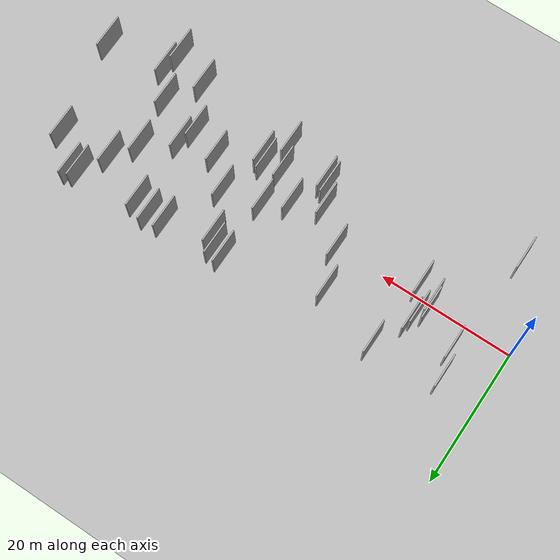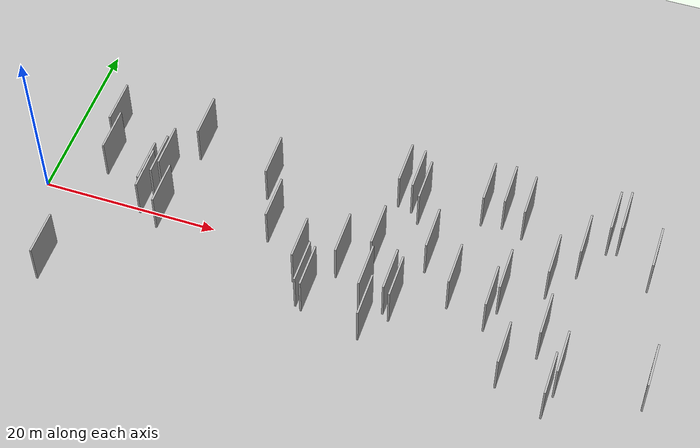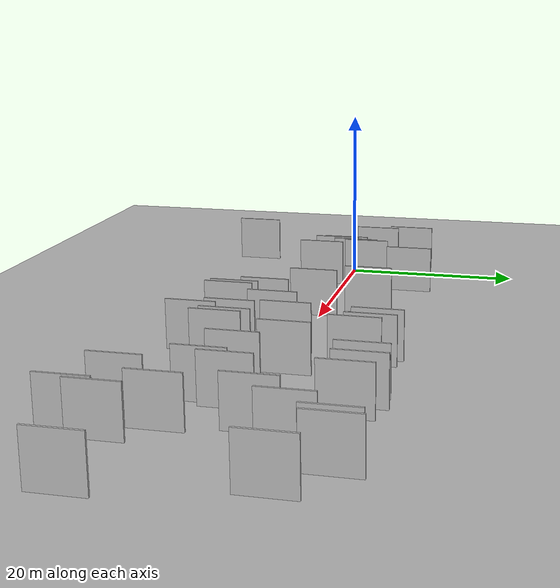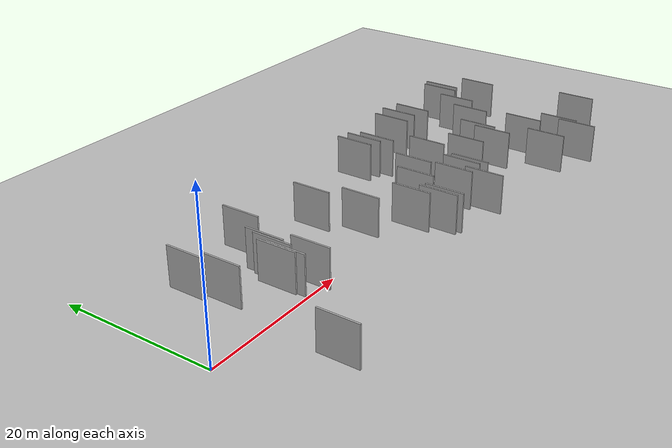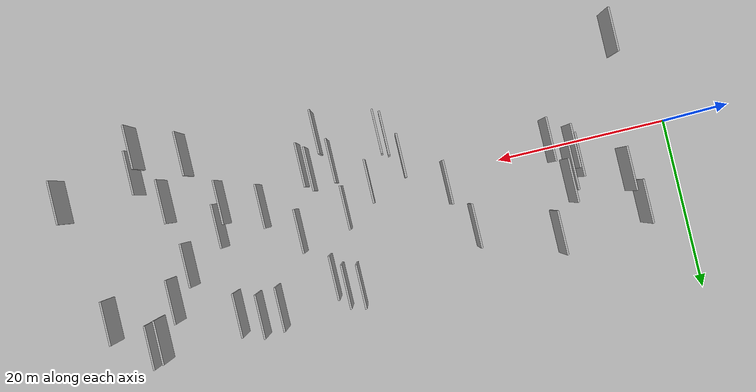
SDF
<?xml version="1.0" encoding="utf-8"?>

<sdf version="1.6">

   <world name="default">

      <gui fullscreen="0">

         <camera name="user_camera">

            <pose>-15 0 4.57585 0 0 0</pose>

            <view_controller>orbit</view_controller>

         </camera>

      </gui>

      <scene>

         <sky>

           <clouds>

             <speed>12</speed>

           </clouds>

         </sky>

         <ambient>0.4 0.4 0.4 1</ambient>

         <background>0.7 0.7 0.7 1</background>

         <shadows>1</shadows>

      </scene>

      <gravity>0 0 -9.8066</gravity>

      <magnetic_field>6e-06 2.3e-05 -4.2e-05</magnetic_field>

      <physics default="0" name="default_physics" type="ode">

         <ode>

            <solver>

               <type>quick</type>

               <iters>10</iters>

               <sor>1.0</sor>

               <use_dynamic_moi_rescaling>0</use_dynamic_moi_rescaling>

            </solver>

            <constraints>

               <cfm>0</cfm>

               <erp>0.2</erp>

               <contact_max_correcting_vel>100</contact_max_correcting_vel>

               <contact_surface_layer>0.001</contact_surface_layer>

            </constraints>

         </ode>

         <max_step_size>0.004</max_step_size>

         <real_time_factor>1</real_time_factor>

         <real_time_update_rate>250</real_time_update_rate>

      </physics>

      <light name="sun" type="directional">

         <cast_shadows>1</cast_shadows>

         <pose>0 0 10 0 0 0</pose>

         <diffuse>0.8 0.8 0.8 1</diffuse>

         <specular>0.2 0.2 0.2 1</specular>

         <attenuation>

            <range>1000</range>

            <constant>0.9</constant>

            <linear>0.01</linear>

            <quadratic>0.001</quadratic>

         </attenuation>

         <direction>-0.5 0.1 -0.9</direction>

      </light>

      <include>

         <name>ground_plane_1</name>

         <uri>model://HANNAS_ground_plane</uri>

         <pose>0 0 0  0 0 0</pose>

      </include>

      <include>

         <name>ground_plane_2</name>

         <uri>model://HANNAS_ground_plane</uri>

         <pose>100 0 0  0 0 0</pose>

      </include>

      <model name="HANNAS_wall_1">

         <static>1</static>

         <pose frame="">38.5839 1.2455 2.5 0.000000 0.000000 1.570796</pose>

         <link name="link">

            <pose frame="">0 0 2.50 0 0 0</pose>

            <collision name="collision">

               <geometry>

                  <box>

                     <size>5.00 0.2 5.00</size>

                  </box>

               </geometry>

               <max_contacts>10</max_contacts>

               <surface>

                  <contact>

                     <ode/>

                  </contact>

                  <bounce/>

                  <friction>

                     <torsional>

                        <ode/>

                     </torsional>

                     <ode/>

                  </friction>

               </surface>

            </collision>

            <visual name="visual">

               <cast_shadows>0</cast_shadows>

               <geometry>

                  <box>

                     <size>5.00 0.2 5.00</size>

                  </box>

               </geometry>

               <material>

                  <script>

                     <uri>model://HANNAS_wall/materials/scripts</uri>

                     <uri>model://HANNAS_wall/materials/textures</uri>

                     <name>vrc/HANNAS_wall</name>

                  </script>

               </material>

            </visual>

            <self_collide>0</self_collide>

            <enable_wind>0</enable_wind>

            <kinematic>0</kinematic>

         </link>

      </model>

      <model name="HANNAS_wall_2">

         <static>1</static>

         <pose frame="">38.9511 -4.1743 2.5 0.000000 0.000000 1.570796</pose>

         <link name="link">

            <pose frame="">0 0 2.50 0 0 0</pose>

            <collision name="collision">

               <geometry>

                  <box>

                     <size>5.00 0.2 5.00</size>

                  </box>

               </geometry>

               <max_contacts>10</max_contacts>

               <surface>

                  <contact>

                     <ode/>

                  </contact>

                  <bounce/>

                  <friction>

                     <torsional>

                        <ode/>

                     </torsional>

                     <ode/>

                  </friction>

               </surface>

            </collision>

            <visual name="visual">

               <cast_shadows>0</cast_shadows>

               <geometry>

                  <box>

                     <size>5.00 0.2 5.00</size>

                  </box>

               </geometry>

               <material>

                  <script>

                     <uri>model://HANNAS_wall/materials/scripts</uri>

                     <uri>model://HANNAS_wall/materials/textures</uri>

                     <name>vrc/HANNAS_wall</name>

                  </script>

               </material>

            </visual>

            <self_collide>0</self_collide>

            <enable_wind>0</enable_wind>

            <kinematic>0</kinematic>

         </link>

      </model>

      <model name="HANNAS_wall_3">

         <static>1</static>

         <pose frame="">39.9873 -7.6967 2.5 0.000000 0.000000 1.570796</pose>

         <link name="link">

            <pose frame="">0 0 2.50 0 0 0</pose>

            <collision name="collision">

               <geometry>

                  <box>

                     <size>5.00 0.2 5.00</size>

                  </box>

               </geometry>

               <max_contacts>10</max_contacts>

               <surface>

                  <contact>

                     <ode/>

                  </contact>

                  <bounce/>

                  <friction>

                     <torsional>

                        <ode/>

                     </torsional>

                     <ode/>

                  </friction>

               </surface>

            </collision>

            <visual name="visual">

               <cast_shadows>0</cast_shadows>

               <geometry>

                  <box>

                     <size>5.00 0.2 5.00</size>

                  </box>

               </geometry>

               <material>

                  <script>

                     <uri>model://HANNAS_wall/materials/scripts</uri>

                     <uri>model://HANNAS_wall/materials/textures</uri>

                     <name>vrc/HANNAS_wall</name>

                  </script>

               </material>

            </visual>

            <self_collide>0</self_collide>

            <enable_wind>0</enable_wind>

            <kinematic>0</kinematic>

         </link>

      </model>

      <model name="HANNAS_wall_4">

         <static>1</static>

         <pose frame="">33.2439 -6.1556 2.5 0.000000 0.000000 1.570796</pose>

         <link name="link">

            <pose frame="">0 0 2.50 0 0 0</pose>

            <collision name="collision">

               <geometry>

                  <box>

                     <size>5.00 0.2 5.00</size>

                  </box>

               </geometry>

               <max_contacts>10</max_contacts>

               <surface>

                  <contact>

                     <ode/>

                  </contact>

                  <bounce/>

                  <friction>

                     <torsional>

                        <ode/>

                     </torsional>

                     <ode/>

                  </friction>

               </surface>

            </collision>

            <visual name="visual">

               <cast_shadows>0</cast_shadows>

               <geometry>

                  <box>

                     <size>5.00 0.2 5.00</size>

                  </box>

               </geometry>

               <material>

                  <script>

                     <uri>model://HANNAS_wall/materials/scripts</uri>

                     <uri>model://HANNAS_wall/materials/textures</uri>

                     <name>vrc/HANNAS_wall</name>

                  </script>

               </material>

            </visual>

            <self_collide>0</self_collide>

            <enable_wind>0</enable_wind>

            <kinematic>0</kinematic>

         </link>

      </model>

      <model name="HANNAS_wall_5">

         <static>1</static>

         <pose frame="">60.3193 -10.7830 2.5 0.000000 0.000000 1.570796</pose>

         <link name="link">

            <pose frame="">0 0 2.50 0 0 0</pose>

            <collision name="collision">

               <geometry>

                  <box>

                     <size>5.00 0.2 5.00</size>

                  </box>

               </geometry>

               <max_contacts>10</max_contacts>

               <surface>

                  <contact>

                     <ode/>

                  </contact>

                  <bounce/>

                  <friction>

                     <torsional>

                        <ode/>

                     </torsional>

                     <ode/>

                  </friction>

               </surface>

            </collision>

            <visual name="visual">

               <cast_shadows>0</cast_shadows>

               <geometry>

                  <box>

                     <size>5.00 0.2 5.00</size>

                  </box>

               </geometry>

               <material>

                  <script>

                     <uri>model://HANNAS_wall/materials/scripts</uri>

                     <uri>model://HANNAS_wall/materials/textures</uri>

                     <name>vrc/HANNAS_wall</name>

                  </script>

               </material>

            </visual>

            <self_collide>0</self_collide>

            <enable_wind>0</enable_wind>

            <kinematic>0</kinematic>

         </link>

      </model>

      <model name="HANNAS_wall_6">

         <static>1</static>

         <pose frame="">15.9076 9.4589 2.5 0.000000 0.000000 1.570796</pose>

         <link name="link">

            <pose frame="">0 0 2.50 0 0 0</pose>

            <collision name="collision">

               <geometry>

                  <box>

                     <size>5.00 0.2 5.00</size>

                  </box>

               </geometry>

               <max_contacts>10</max_contacts>

               <surface>

                  <contact>

                     <ode/>

                  </contact>

                  <bounce/>

                  <friction>

                     <torsional>

                        <ode/>

                     </torsional>

                     <ode/>

                  </friction>

               </surface>

            </collision>

            <visual name="visual">

               <cast_shadows>0</cast_shadows>

               <geometry>

                  <box>

                     <size>5.00 0.2 5.00</size>

                  </box>

               </geometry>

               <material>

                  <script>

                     <uri>model://HANNAS_wall/materials/scripts</uri>

                     <uri>model://HANNAS_wall/materials/textures</uri>

                     <name>vrc/HANNAS_wall</name>

                  </script>

               </material>

            </visual>

            <self_collide>0</self_collide>

            <enable_wind>0</enable_wind>

            <kinematic>0</kinematic>

         </link>

      </model>

      <model name="HANNAS_wall_7">

         <static>1</static>

         <pose frame="">55.0136 -8.7789 2.5 0.000000 0.000000 1.570796</pose>

         <link name="link">

            <pose frame="">0 0 2.50 0 0 0</pose>

            <collision name="collision">

               <geometry>

                  <box>

                     <size>5.00 0.2 5.00</size>

                  </box>

               </geometry>

               <max_contacts>10</max_contacts>

               <surface>

                  <contact>

                     <ode/>

                  </contact>

                  <bounce/>

                  <friction>

                     <torsional>

                        <ode/>

                     </torsional>

                     <ode/>

                  </friction>

               </surface>

            </collision>

            <visual name="visual">

               <cast_shadows>0</cast_shadows>

               <geometry>

                  <box>

                     <size>5.00 0.2 5.00</size>

                  </box>

               </geometry>

               <material>

                  <script>

                     <uri>model://HANNAS_wall/materials/scripts</uri>

                     <uri>model://HANNAS_wall/materials/textures</uri>

                     <name>vrc/HANNAS_wall</name>

                  </script>

               </material>

            </visual>

            <self_collide>0</self_collide>

            <enable_wind>0</enable_wind>

            <kinematic>0</kinematic>

         </link>

      </model>

      <model name="HANNAS_wall_8">

         <static>1</static>

         <pose frame="">26.9141 1.1193 2.5 0.000000 0.000000 1.570796</pose>

         <link name="link">

            <pose frame="">0 0 2.50 0 0 0</pose>

            <collision name="collision">

               <geometry>

                  <box>

                     <size>5.00 0.2 5.00</size>

                  </box>

               </geometry>

               <max_contacts>10</max_contacts>

               <surface>

                  <contact>

                     <ode/>

                  </contact>

                  <bounce/>

                  <friction>

                     <torsional>

                        <ode/>

                     </torsional>

                     <ode/>

                  </friction>

               </surface>

            </collision>

            <visual name="visual">

               <cast_shadows>0</cast_shadows>

               <geometry>

                  <box>

                     <size>5.00 0.2 5.00</size>

                  </box>

               </geometry>

               <material>

                  <script>

                     <uri>model://HANNAS_wall/materials/scripts</uri>

                     <uri>model://HANNAS_wall/materials/textures</uri>

                     <name>vrc/HANNAS_wall</name>

                  </script>

               </material>

            </visual>

            <self_collide>0</self_collide>

            <enable_wind>0</enable_wind>

            <kinematic>0</kinematic>

         </link>

      </model>

      <model name="HANNAS_wall_9">

         <static>1</static>

         <pose frame="">12.1025 1.4689 2.5 0.000000 0.000000 1.570796</pose>

         <link name="link">

            <pose frame="">0 0 2.50 0 0 0</pose>

            <collision name="collision">

               <geometry>

                  <box>

                     <size>5.00 0.2 5.00</size>

                  </box>

               </geometry>

               <max_contacts>10</max_contacts>

               <surface>

                  <contact>

                     <ode/>

                  </contact>

                  <bounce/>

                  <friction>

                     <torsional>

                        <ode/>

                     </torsional>

                     <ode/>

                  </friction>

               </surface>

            </collision>

            <visual name="visual">

               <cast_shadows>0</cast_shadows>

               <geometry>

                  <box>

                     <size>5.00 0.2 5.00</size>

                  </box>

               </geometry>

               <material>

                  <script>

                     <uri>model://HANNAS_wall/materials/scripts</uri>

                     <uri>model://HANNAS_wall/materials/textures</uri>

                     <name>vrc/HANNAS_wall</name>

                  </script>

               </material>

            </visual>

            <self_collide>0</self_collide>

            <enable_wind>0</enable_wind>

            <kinematic>0</kinematic>

         </link>

      </model>

      <model name="HANNAS_wall_10">

         <static>1</static>

         <pose frame="">31.2477 -2.9496 2.5 0.000000 0.000000 1.570796</pose>

         <link name="link">

            <pose frame="">0 0 2.50 0 0 0</pose>

            <collision name="collision">

               <geometry>

                  <box>

                     <size>5.00 0.2 5.00</size>

                  </box>

               </geometry>

               <max_contacts>10</max_contacts>

               <surface>

                  <contact>

                     <ode/>

                  </contact>

                  <bounce/>

                  <friction>

                     <torsional>

                        <ode/>

                     </torsional>

                     <ode/>

                  </friction>

               </surface>

            </collision>

            <visual name="visual">

               <cast_shadows>0</cast_shadows>

               <geometry>

                  <box>

                     <size>5.00 0.2 5.00</size>

                  </box>

               </geometry>

               <material>

                  <script>

                     <uri>model://HANNAS_wall/materials/scripts</uri>

                     <uri>model://HANNAS_wall/materials/textures</uri>

                     <name>vrc/HANNAS_wall</name>

                  </script>

               </material>

            </visual>

            <self_collide>0</self_collide>

            <enable_wind>0</enable_wind>

            <kinematic>0</kinematic>

         </link>

      </model>

      <model name="HANNAS_wall_11">

         <static>1</static>

         <pose frame="">41.5509 8.5047 2.5 0.000000 0.000000 1.570796</pose>

         <link name="link">

            <pose frame="">0 0 2.50 0 0 0</pose>

            <collision name="collision">

               <geometry>

                  <box>

                     <size>5.00 0.2 5.00</size>

                  </box>

               </geometry>

               <max_contacts>10</max_contacts>

               <surface>

                  <contact>

                     <ode/>

                  </contact>

                  <bounce/>

                  <friction>

                     <torsional>

                        <ode/>

                     </torsional>

                     <ode/>

                  </friction>

               </surface>

            </collision>

            <visual name="visual">

               <cast_shadows>0</cast_shadows>

               <geometry>

                  <box>

                     <size>5.00 0.2 5.00</size>

                  </box>

               </geometry>

               <material>

                  <script>

                     <uri>model://HANNAS_wall/materials/scripts</uri>

                     <uri>model://HANNAS_wall/materials/textures</uri>

                     <name>vrc/HANNAS_wall</name>

                  </script>

               </material>

            </visual>

            <self_collide>0</self_collide>

            <enable_wind>0</enable_wind>

            <kinematic>0</kinematic>

         </link>

      </model>

      <model name="HANNAS_wall_12">

         <static>1</static>

         <pose frame="">59.6505 6.9397 2.5 0.000000 0.000000 1.570796</pose>

         <link name="link">

            <pose frame="">0 0 2.50 0 0 0</pose>

            <collision name="collision">

               <geometry>

                  <box>

                     <size>5.00 0.2 5.00</size>

                  </box>

               </geometry>

               <max_contacts>10</max_contacts>

               <surface>

                  <contact>

                     <ode/>

                  </contact>

                  <bounce/>

                  <friction>

                     <torsional>

                        <ode/>

                     </torsional>

                     <ode/>

                  </friction>

               </surface>

            </collision>

            <visual name="visual">

               <cast_shadows>0</cast_shadows>

               <geometry>

                  <box>

                     <size>5.00 0.2 5.00</size>

                  </box>

               </geometry>

               <material>

                  <script>

                     <uri>model://HANNAS_wall/materials/scripts</uri>

                     <uri>model://HANNAS_wall/materials/textures</uri>

                     <name>vrc/HANNAS_wall</name>

                  </script>

               </material>

            </visual>

            <self_collide>0</self_collide>

            <enable_wind>0</enable_wind>

            <kinematic>0</kinematic>

         </link>

      </model>

      <model name="HANNAS_wall_13">

         <static>1</static>

         <pose frame="">13.0613 2.7871 2.5 0.000000 0.000000 1.570796</pose>

         <link name="link">

            <pose frame="">0 0 2.50 0 0 0</pose>

            <collision name="collision">

               <geometry>

                  <box>

                     <size>5.00 0.2 5.00</size>

                  </box>

               </geometry>

               <max_contacts>10</max_contacts>

               <surface>

                  <contact>

                     <ode/>

                  </contact>

                  <bounce/>

                  <friction>

                     <torsional>

                        <ode/>

                     </torsional>

                     <ode/>

                  </friction>

               </surface>

            </collision>

            <visual name="visual">

               <cast_shadows>0</cast_shadows>

               <geometry>

                  <box>

                     <size>5.00 0.2 5.00</size>

                  </box>

               </geometry>

               <material>

                  <script>

                     <uri>model://HANNAS_wall/materials/scripts</uri>

                     <uri>model://HANNAS_wall/materials/textures</uri>

                     <name>vrc/HANNAS_wall</name>

                  </script>

               </material>

            </visual>

            <self_collide>0</self_collide>

            <enable_wind>0</enable_wind>

            <kinematic>0</kinematic>

         </link>

      </model>

      <model name="HANNAS_wall_14">

         <static>1</static>

         <pose frame="">14.7892 -0.8775 2.5 0.000000 0.000000 1.570796</pose>

         <link name="link">

            <pose frame="">0 0 2.50 0 0 0</pose>

            <collision name="collision">

               <geometry>

                  <box>

                     <size>5.00 0.2 5.00</size>

                  </box>

               </geometry>

               <max_contacts>10</max_contacts>

               <surface>

                  <contact>

                     <ode/>

                  </contact>

                  <bounce/>

                  <friction>

                     <torsional>

                        <ode/>

                     </torsional>

                     <ode/>

                  </friction>

               </surface>

            </collision>

            <visual name="visual">

               <cast_shadows>0</cast_shadows>

               <geometry>

                  <box>

                     <size>5.00 0.2 5.00</size>

                  </box>

               </geometry>

               <material>

                  <script>

                     <uri>model://HANNAS_wall/materials/scripts</uri>

                     <uri>model://HANNAS_wall/materials/textures</uri>

                     <name>vrc/HANNAS_wall</name>

                  </script>

               </material>

            </visual>

            <self_collide>0</self_collide>

            <enable_wind>0</enable_wind>

            <kinematic>0</kinematic>

         </link>

      </model>

      <model name="HANNAS_wall_15">

         <static>1</static>

         <pose frame="">5.9599 8.2509 2.5 0.000000 0.000000 1.570796</pose>

         <link name="link">

            <pose frame="">0 0 2.50 0 0 0</pose>

            <collision name="collision">

               <geometry>

                  <box>

                     <size>5.00 0.2 5.00</size>

                  </box>

               </geometry>

               <max_contacts>10</max_contacts>

               <surface>

                  <contact>

                     <ode/>

                  </contact>

                  <bounce/>

                  <friction>

                     <torsional>

                        <ode/>

                     </torsional>

                     <ode/>

                  </friction>

               </surface>

            </collision>

            <visual name="visual">

               <cast_shadows>0</cast_shadows>

               <geometry>

                  <box>

                     <size>5.00 0.2 5.00</size>

                  </box>

               </geometry>

               <material>

                  <script>

                     <uri>model://HANNAS_wall/materials/scripts</uri>

                     <uri>model://HANNAS_wall/materials/textures</uri>

                     <name>vrc/HANNAS_wall</name>

                  </script>

               </material>

            </visual>

            <self_collide>0</self_collide>

            <enable_wind>0</enable_wind>

            <kinematic>0</kinematic>

         </link>

      </model>

      <model name="HANNAS_wall_16">

         <static>1</static>

         <pose frame="">38.8552 10.1349 2.5 0.000000 0.000000 1.570796</pose>

         <link name="link">

            <pose frame="">0 0 2.50 0 0 0</pose>

            <collision name="collision">

               <geometry>

                  <box>

                     <size>5.00 0.2 5.00</size>

                  </box>

               </geometry>

               <max_contacts>10</max_contacts>

               <surface>

                  <contact>

                     <ode/>

                  </contact>

                  <bounce/>

                  <friction>

                     <torsional>

                        <ode/>

                     </torsional>

                     <ode/>

                  </friction>

               </surface>

            </collision>

            <visual name="visual">

               <cast_shadows>0</cast_shadows>

               <geometry>

                  <box>

                     <size>5.00 0.2 5.00</size>

                  </box>

               </geometry>

               <material>

                  <script>

                     <uri>model://HANNAS_wall/materials/scripts</uri>

                     <uri>model://HANNAS_wall/materials/textures</uri>

                     <name>vrc/HANNAS_wall</name>

                  </script>

               </material>

            </visual>

            <self_collide>0</self_collide>

            <enable_wind>0</enable_wind>

            <kinematic>0</kinematic>

         </link>

      </model>

      <model name="HANNAS_wall_17">

         <static>1</static>

         <pose frame="">52.0293 -2.5600 2.5 0.000000 0.000000 1.570796</pose>

         <link name="link">

            <pose frame="">0 0 2.50 0 0 0</pose>

            <collision name="collision">

               <geometry>

                  <box>

                     <size>5.00 0.2 5.00</size>

                  </box>

               </geometry>

               <max_contacts>10</max_contacts>

               <surface>

                  <contact>

                     <ode/>

                  </contact>

                  <bounce/>

                  <friction>

                     <torsional>

                        <ode/>

                     </torsional>

                     <ode/>

                  </friction>

               </surface>

            </collision>

            <visual name="visual">

               <cast_shadows>0</cast_shadows>

               <geometry>

                  <box>

                     <size>5.00 0.2 5.00</size>

                  </box>

               </geometry>

               <material>

                  <script>

                     <uri>model://HANNAS_wall/materials/scripts</uri>

                     <uri>model://HANNAS_wall/materials/textures</uri>

                     <name>vrc/HANNAS_wall</name>

                  </script>

               </material>

            </visual>

            <self_collide>0</self_collide>

            <enable_wind>0</enable_wind>

            <kinematic>0</kinematic>

         </link>

      </model>

      <model name="HANNAS_wall_18">

         <static>1</static>

         <pose frame="">44.1440 2.6010 2.5 0.000000 0.000000 1.570796</pose>

         <link name="link">

            <pose frame="">0 0 2.50 0 0 0</pose>

            <collision name="collision">

               <geometry>

                  <box>

                     <size>5.00 0.2 5.00</size>

                  </box>

               </geometry>

               <max_contacts>10</max_contacts>

               <surface>

                  <contact>

                     <ode/>

                  </contact>

                  <bounce/>

                  <friction>

                     <torsional>

                        <ode/>

                     </torsional>

                     <ode/>

                  </friction>

               </surface>

            </collision>

            <visual name="visual">

               <cast_shadows>0</cast_shadows>

               <geometry>

                  <box>

                     <size>5.00 0.2 5.00</size>

                  </box>

               </geometry>

               <material>

                  <script>

                     <uri>model://HANNAS_wall/materials/scripts</uri>

                     <uri>model://HANNAS_wall/materials/textures</uri>

                     <name>vrc/HANNAS_wall</name>

                  </script>

               </material>

            </visual>

            <self_collide>0</self_collide>

            <enable_wind>0</enable_wind>

            <kinematic>0</kinematic>

         </link>

      </model>

      <model name="HANNAS_wall_19">

         <static>1</static>

         <pose frame="">63.0429 11.2792 2.5 0.000000 0.000000 1.570796</pose>

         <link name="link">

            <pose frame="">0 0 2.50 0 0 0</pose>

            <collision name="collision">

               <geometry>

                  <box>

                     <size>5.00 0.2 5.00</size>

                  </box>

               </geometry>

               <max_contacts>10</max_contacts>

               <surface>

                  <contact>

                     <ode/>

                  </contact>

                  <bounce/>

                  <friction>

                     <torsional>

                        <ode/>

                     </torsional>

                     <ode/>

                  </friction>

               </surface>

            </collision>

            <visual name="visual">

               <cast_shadows>0</cast_shadows>

               <geometry>

                  <box>

                     <size>5.00 0.2 5.00</size>

                  </box>

               </geometry>

               <material>

                  <script>

                     <uri>model://HANNAS_wall/materials/scripts</uri>

                     <uri>model://HANNAS_wall/materials/textures</uri>

                     <name>vrc/HANNAS_wall</name>

                  </script>

               </material>

            </visual>

            <self_collide>0</self_collide>

            <enable_wind>0</enable_wind>

            <kinematic>0</kinematic>

         </link>

      </model>

      <model name="HANNAS_wall_20">

         <static>1</static>

         <pose frame="">41.4961 -3.8422 2.5 0.000000 0.000000 1.570796</pose>

         <link name="link">

            <pose frame="">0 0 2.50 0 0 0</pose>

            <collision name="collision">

               <geometry>

                  <box>

                     <size>5.00 0.2 5.00</size>

                  </box>

               </geometry>

               <max_contacts>10</max_contacts>

               <surface>

                  <contact>

                     <ode/>

                  </contact>

                  <bounce/>

                  <friction>

                     <torsional>

                        <ode/>

                     </torsional>

                     <ode/>

                  </friction>

               </surface>

            </collision>

            <visual name="visual">

               <cast_shadows>0</cast_shadows>

               <geometry>

                  <box>

                     <size>5.00 0.2 5.00</size>

                  </box>

               </geometry>

               <material>

                  <script>

                     <uri>model://HANNAS_wall/materials/scripts</uri>

                     <uri>model://HANNAS_wall/materials/textures</uri>

                     <name>vrc/HANNAS_wall</name>

                  </script>

               </material>

            </visual>

            <self_collide>0</self_collide>

            <enable_wind>0</enable_wind>

            <kinematic>0</kinematic>

         </link>

      </model>

      <model name="HANNAS_wall_21">

         <static>1</static>

         <pose frame="">61.9417 10.9624 2.5 0.000000 0.000000 1.570796</pose>

         <link name="link">

            <pose frame="">0 0 2.50 0 0 0</pose>

            <collision name="collision">

               <geometry>

                  <box>

                     <size>5.00 0.2 5.00</size>

                  </box>

               </geometry>

               <max_contacts>10</max_contacts>

               <surface>

                  <contact>

                     <ode/>

                  </contact>

                  <bounce/>

                  <friction>

                     <torsional>

                        <ode/>

                     </torsional>

                     <ode/>

                  </friction>

               </surface>

            </collision>

            <visual name="visual">

               <cast_shadows>0</cast_shadows>

               <geometry>

                  <box>

                     <size>5.00 0.2 5.00</size>

                  </box>

               </geometry>

               <material>

                  <script>

                     <uri>model://HANNAS_wall/materials/scripts</uri>

                     <uri>model://HANNAS_wall/materials/textures</uri>

                     <name>vrc/HANNAS_wall</name>

                  </script>

               </material>

            </visual>

            <self_collide>0</self_collide>

            <enable_wind>0</enable_wind>

            <kinematic>0</kinematic>

         </link>

      </model>

      <model name="HANNAS_wall_22">

         <static>1</static>

         <pose frame="">52.8143 10.0720 2.5 0.000000 0.000000 1.570796</pose>

         <link name="link">

            <pose frame="">0 0 2.50 0 0 0</pose>

            <collision name="collision">

               <geometry>

                  <box>

                     <size>5.00 0.2 5.00</size>

                  </box>

               </geometry>

               <max_contacts>10</max_contacts>

               <surface>

                  <contact>

                     <ode/>

                  </contact>

                  <bounce/>

                  <friction>

                     <torsional>

                        <ode/>

                     </torsional>

                     <ode/>

                  </friction>

               </surface>

            </collision>

            <visual name="visual">

               <cast_shadows>0</cast_shadows>

               <geometry>

                  <box>

                     <size>5.00 0.2 5.00</size>

                  </box>

               </geometry>

               <material>

                  <script>

                     <uri>model://HANNAS_wall/materials/scripts</uri>

                     <uri>model://HANNAS_wall/materials/textures</uri>

                     <name>vrc/HANNAS_wall</name>

                  </script>

               </material>

            </visual>

            <self_collide>0</self_collide>

            <enable_wind>0</enable_wind>

            <kinematic>0</kinematic>

         </link>

      </model>

      <model name="HANNAS_wall_23">

         <static>1</static>

         <pose frame="">48.1497 10.5007 2.5 0.000000 0.000000 1.570796</pose>

         <link name="link">

            <pose frame="">0 0 2.50 0 0 0</pose>

            <collision name="collision">

               <geometry>

                  <box>

                     <size>5.00 0.2 5.00</size>

                  </box>

               </geometry>

               <max_contacts>10</max_contacts>

               <surface>

                  <contact>

                     <ode/>

                  </contact>

                  <bounce/>

                  <friction>

                     <torsional>

                        <ode/>

                     </torsional>

                     <ode/>

                  </friction>

               </surface>

            </collision>

            <visual name="visual">

               <cast_shadows>0</cast_shadows>

               <geometry>

                  <box>

                     <size>5.00 0.2 5.00</size>

                  </box>

               </geometry>

               <material>

                  <script>

                     <uri>model://HANNAS_wall/materials/scripts</uri>

                     <uri>model://HANNAS_wall/materials/textures</uri>

                     <name>vrc/HANNAS_wall</name>

                  </script>

               </material>

            </visual>

            <self_collide>0</self_collide>

            <enable_wind>0</enable_wind>

            <kinematic>0</kinematic>

         </link>

      </model>

      <model name="HANNAS_wall_24">

         <static>1</static>

         <pose frame="">12.3354 0.4411 2.5 0.000000 0.000000 1.570796</pose>

         <link name="link">

            <pose frame="">0 0 2.50 0 0 0</pose>

            <collision name="collision">

               <geometry>

                  <box>

                     <size>5.00 0.2 5.00</size>

                  </box>

               </geometry>

               <max_contacts>10</max_contacts>

               <surface>

                  <contact>

                     <ode/>

                  </contact>

                  <bounce/>

                  <friction>

                     <torsional>

                        <ode/>

                     </torsional>

                     <ode/>

                  </friction>

               </surface>

            </collision>

            <visual name="visual">

               <cast_shadows>0</cast_shadows>

               <geometry>

                  <box>

                     <size>5.00 0.2 5.00</size>

                  </box>

               </geometry>

               <material>

                  <script>

                     <uri>model://HANNAS_wall/materials/scripts</uri>

                     <uri>model://HANNAS_wall/materials/textures</uri>

                     <name>vrc/HANNAS_wall</name>

                  </script>

               </material>

            </visual>

            <self_collide>0</self_collide>

            <enable_wind>0</enable_wind>

            <kinematic>0</kinematic>

         </link>

      </model>

      <model name="HANNAS_wall_25">

         <static>1</static>

         <pose frame="">35.3635 -0.9899 2.5 0.000000 0.000000 1.570796</pose>

         <link name="link">

            <pose frame="">0 0 2.50 0 0 0</pose>

            <collision name="collision">

               <geometry>

                  <box>

                     <size>5.00 0.2 5.00</size>

                  </box>

               </geometry>

               <max_contacts>10</max_contacts>

               <surface>

                  <contact>

                     <ode/>

                  </contact>

                  <bounce/>

                  <friction>

                     <torsional>

                        <ode/>

                     </torsional>

                     <ode/>

                  </friction>

               </surface>

            </collision>

            <visual name="visual">

               <cast_shadows>0</cast_shadows>

               <geometry>

                  <box>

                     <size>5.00 0.2 5.00</size>

                  </box>

               </geometry>

               <material>

                  <script>

                     <uri>model://HANNAS_wall/materials/scripts</uri>

                     <uri>model://HANNAS_wall/materials/textures</uri>

                     <name>vrc/HANNAS_wall</name>

                  </script>

               </material>

            </visual>

            <self_collide>0</self_collide>

            <enable_wind>0</enable_wind>

            <kinematic>0</kinematic>

         </link>

      </model>

      <model name="HANNAS_wall_26">

         <static>1</static>

         <pose frame="">52.8299 -0.0363 2.5 0.000000 0.000000 1.570796</pose>

         <link name="link">

            <pose frame="">0 0 2.50 0 0 0</pose>

            <collision name="collision">

               <geometry>

                  <box>

                     <size>5.00 0.2 5.00</size>

                  </box>

               </geometry>

               <max_contacts>10</max_contacts>

               <surface>

                  <contact>

                     <ode/>

                  </contact>

                  <bounce/>

                  <friction>

                     <torsional>

                        <ode/>

                     </torsional>

                     <ode/>

                  </friction>

               </surface>

            </collision>

            <visual name="visual">

               <cast_shadows>0</cast_shadows>

               <geometry>

                  <box>

                     <size>5.00 0.2 5.00</size>

                  </box>

               </geometry>

               <material>

                  <script>

                     <uri>model://HANNAS_wall/materials/scripts</uri>

                     <uri>model://HANNAS_wall/materials/textures</uri>

                     <name>vrc/HANNAS_wall</name>

                  </script>

               </material>

            </visual>

            <self_collide>0</self_collide>

            <enable_wind>0</enable_wind>

            <kinematic>0</kinematic>

         </link>

      </model>

      <model name="HANNAS_wall_27">

         <static>1</static>

         <pose frame="">13.4301 4.1102 2.5 0.000000 0.000000 1.570796</pose>

         <link name="link">

            <pose frame="">0 0 2.50 0 0 0</pose>

            <collision name="collision">

               <geometry>

                  <box>

                     <size>5.00 0.2 5.00</size>

                  </box>

               </geometry>

               <max_contacts>10</max_contacts>

               <surface>

                  <contact>

                     <ode/>

                  </contact>

                  <bounce/>

                  <friction>

                     <torsional>

                        <ode/>

                     </torsional>

                     <ode/>

                  </friction>

               </surface>

            </collision>

            <visual name="visual">

               <cast_shadows>0</cast_shadows>

               <geometry>

                  <box>

                     <size>5.00 0.2 5.00</size>

                  </box>

               </geometry>

               <material>

                  <script>

                     <uri>model://HANNAS_wall/materials/scripts</uri>

                     <uri>model://HANNAS_wall/materials/textures</uri>

                     <name>vrc/HANNAS_wall</name>

                  </script>

               </material>

            </visual>

            <self_collide>0</self_collide>

            <enable_wind>0</enable_wind>

            <kinematic>0</kinematic>

         </link>

      </model>

      <model name="HANNAS_wall_28">

         <static>1</static>

         <pose frame="">57.1430 3.4016 2.5 0.000000 0.000000 1.570796</pose>

         <link name="link">

            <pose frame="">0 0 2.50 0 0 0</pose>

            <collision name="collision">

               <geometry>

                  <box>

                     <size>5.00 0.2 5.00</size>

                  </box>

               </geometry>

               <max_contacts>10</max_contacts>

               <surface>

                  <contact>

                     <ode/>

                  </contact>

                  <bounce/>

                  <friction>

                     <torsional>

                        <ode/>

                     </torsional>

                     <ode/>

                  </friction>

               </surface>

            </collision>

            <visual name="visual">

               <cast_shadows>0</cast_shadows>

               <geometry>

                  <box>

                     <size>5.00 0.2 5.00</size>

                  </box>

               </geometry>

               <material>

                  <script>

                     <uri>model://HANNAS_wall/materials/scripts</uri>

                     <uri>model://HANNAS_wall/materials/textures</uri>

                     <name>vrc/HANNAS_wall</name>

                  </script>

               </material>

            </visual>

            <self_collide>0</self_collide>

            <enable_wind>0</enable_wind>

            <kinematic>0</kinematic>

         </link>

      </model>

      <model name="HANNAS_wall_29">

         <static>1</static>

         <pose frame="">32.5120 -5.7717 2.5 0.000000 0.000000 1.570796</pose>

         <link name="link">

            <pose frame="">0 0 2.50 0 0 0</pose>

            <collision name="collision">

               <geometry>

                  <box>

                     <size>5.00 0.2 5.00</size>

                  </box>

               </geometry>

               <max_contacts>10</max_contacts>

               <surface>

                  <contact>

                     <ode/>

                  </contact>

                  <bounce/>

                  <friction>

                     <torsional>

                        <ode/>

                     </torsional>

                     <ode/>

                  </friction>

               </surface>

            </collision>

            <visual name="visual">

               <cast_shadows>0</cast_shadows>

               <geometry>

                  <box>

                     <size>5.00 0.2 5.00</size>

                  </box>

               </geometry>

               <material>

                  <script>

                     <uri>model://HANNAS_wall/materials/scripts</uri>

                     <uri>model://HANNAS_wall/materials/textures</uri>

                     <name>vrc/HANNAS_wall</name>

                  </script>

               </material>

            </visual>

            <self_collide>0</self_collide>

            <enable_wind>0</enable_wind>

            <kinematic>0</kinematic>

         </link>

      </model>

      <model name="HANNAS_wall_30">

         <static>1</static>

         <pose frame="">42.3288 -4.5111 2.5 0.000000 0.000000 1.570796</pose>

         <link name="link">

            <pose frame="">0 0 2.50 0 0 0</pose>

            <collision name="collision">

               <geometry>

                  <box>

                     <size>5.00 0.2 5.00</size>

                  </box>

               </geometry>

               <max_contacts>10</max_contacts>

               <surface>

                  <contact>

                     <ode/>

                  </contact>

                  <bounce/>

                  <friction>

                     <torsional>

                        <ode/>

                     </torsional>

                     <ode/>

                  </friction>

               </surface>

            </collision>

            <visual name="visual">

               <cast_shadows>0</cast_shadows>

               <geometry>

                  <box>

                     <size>5.00 0.2 5.00</size>

                  </box>

               </geometry>

               <material>

                  <script>

                     <uri>model://HANNAS_wall/materials/scripts</uri>

                     <uri>model://HANNAS_wall/materials/textures</uri>

                     <name>vrc/HANNAS_wall</name>

                  </script>

               </material>

            </visual>

            <self_collide>0</self_collide>

            <enable_wind>0</enable_wind>

            <kinematic>0</kinematic>

         </link>

      </model>

      <model name="HANNAS_wall_31">

         <static>1</static>

         <pose frame="">58.1707 -4.0995 2.5 0.000000 0.000000 1.570796</pose>

         <link name="link">

            <pose frame="">0 0 2.50 0 0 0</pose>

            <collision name="collision">

               <geometry>

                  <box>

                     <size>5.00 0.2 5.00</size>

                  </box>

               </geometry>

               <max_contacts>10</max_contacts>

               <surface>

                  <contact>

                     <ode/>

                  </contact>

                  <bounce/>

                  <friction>

                     <torsional>

                        <ode/>

                     </torsional>

                     <ode/>

                  </friction>

               </surface>

            </collision>

            <visual name="visual">

               <cast_shadows>0</cast_shadows>

               <geometry>

                  <box>

                     <size>5.00 0.2 5.00</size>

                  </box>

               </geometry>

               <material>

                  <script>

                     <uri>model://HANNAS_wall/materials/scripts</uri>

                     <uri>model://HANNAS_wall/materials/textures</uri>

                     <name>vrc/HANNAS_wall</name>

                  </script>

               </material>

            </visual>

            <self_collide>0</self_collide>

            <enable_wind>0</enable_wind>

            <kinematic>0</kinematic>

         </link>

      </model>

      <model name="HANNAS_wall_32">

         <static>1</static>

         <pose frame="">40.4641 9.7614 2.5 0.000000 0.000000 1.570796</pose>

         <link name="link">

            <pose frame="">0 0 2.50 0 0 0</pose>

            <collision name="collision">

               <geometry>

                  <box>

                     <size>5.00 0.2 5.00</size>

                  </box>

               </geometry>

               <max_contacts>10</max_contacts>

               <surface>

                  <contact>

                     <ode/>

                  </contact>

                  <bounce/>

                  <friction>

                     <torsional>

                        <ode/>

                     </torsional>

                     <ode/>

                  </friction>

               </surface>

            </collision>

            <visual name="visual">

               <cast_shadows>0</cast_shadows>

               <geometry>

                  <box>

                     <size>5.00 0.2 5.00</size>

                  </box>

               </geometry>

               <material>

                  <script>

                     <uri>model://HANNAS_wall/materials/scripts</uri>

                     <uri>model://HANNAS_wall/materials/textures</uri>

                     <name>vrc/HANNAS_wall</name>

                  </script>

               </material>

            </visual>

            <self_collide>0</self_collide>

            <enable_wind>0</enable_wind>

            <kinematic>0</kinematic>

         </link>

      </model>

      <model name="HANNAS_wall_33">

         <static>1</static>

         <pose frame="">6.8540 4.3051 2.5 0.000000 0.000000 1.570796</pose>

         <link name="link">

            <pose frame="">0 0 2.50 0 0 0</pose>

            <collision name="collision">

               <geometry>

                  <box>

                     <size>5.00 0.2 5.00</size>

                  </box>

               </geometry>

               <max_contacts>10</max_contacts>

               <surface>

                  <contact>

                     <ode/>

                  </contact>

                  <bounce/>

                  <friction>

                     <torsional>

                        <ode/>

                     </torsional>

                     <ode/>

                  </friction>

               </surface>

            </collision>

            <visual name="visual">

               <cast_shadows>0</cast_shadows>

               <geometry>

                  <box>

                     <size>5.00 0.2 5.00</size>

                  </box>

               </geometry>

               <material>

                  <script>

                     <uri>model://HANNAS_wall/materials/scripts</uri>

                     <uri>model://HANNAS_wall/materials/textures</uri>

                     <name>vrc/HANNAS_wall</name>

                  </script>

               </material>

            </visual>

            <self_collide>0</self_collide>

            <enable_wind>0</enable_wind>

            <kinematic>0</kinematic>

         </link>

      </model>

      <model name="HANNAS_wall_34">

         <static>1</static>

         <pose frame="">50.4342 10.7743 2.5 0.000000 0.000000 1.570796</pose>

         <link name="link">

            <pose frame="">0 0 2.50 0 0 0</pose>

            <collision name="collision">

               <geometry>

                  <box>

                     <size>5.00 0.2 5.00</size>

                  </box>

               </geometry>

               <max_contacts>10</max_contacts>

               <surface>

                  <contact>

                     <ode/>

                  </contact>

                  <bounce/>

                  <friction>

                     <torsional>

                        <ode/>

                     </torsional>

                     <ode/>

                  </friction>

               </surface>

            </collision>

            <visual name="visual">

               <cast_shadows>0</cast_shadows>

               <geometry>

                  <box>

                     <size>5.00 0.2 5.00</size>

                  </box>

               </geometry>

               <material>

                  <script>

                     <uri>model://HANNAS_wall/materials/scripts</uri>

                     <uri>model://HANNAS_wall/materials/textures</uri>

                     <name>vrc/HANNAS_wall</name>

                  </script>

               </material>

            </visual>

            <self_collide>0</self_collide>

            <enable_wind>0</enable_wind>

            <kinematic>0</kinematic>

         </link>

      </model>

      <model name="HANNAS_wall_35">

         <static>1</static>

         <pose frame="">67.1350 7.5795 2.5 0.000000 0.000000 1.570796</pose>

         <link name="link">

            <pose frame="">0 0 2.50 0 0 0</pose>

            <collision name="collision">

               <geometry>

                  <box>

                     <size>5.00 0.2 5.00</size>

                  </box>

               </geometry>

               <max_contacts>10</max_contacts>

               <surface>

                  <contact>

                     <ode/>

                  </contact>

                  <bounce/>

                  <friction>

                     <torsional>

                        <ode/>

                     </torsional>

                     <ode/>

                  </friction>

               </surface>

            </collision>

            <visual name="visual">

               <cast_shadows>0</cast_shadows>

               <geometry>

                  <box>

                     <size>5.00 0.2 5.00</size>

                  </box>

               </geometry>

               <material>

                  <script>

                     <uri>model://HANNAS_wall/materials/scripts</uri>

                     <uri>model://HANNAS_wall/materials/textures</uri>

                     <name>vrc/HANNAS_wall</name>

                  </script>

               </material>

            </visual>

            <self_collide>0</self_collide>

            <enable_wind>0</enable_wind>

            <kinematic>0</kinematic>

         </link>

      </model>

      <model name="HANNAS_wall_36">

         <static>1</static>

         <pose frame="">60.8805 -7.9786 2.5 0.000000 0.000000 1.570796</pose>

         <link name="link">

            <pose frame="">0 0 2.50 0 0 0</pose>

            <collision name="collision">

               <geometry>

                  <box>

                     <size>5.00 0.2 5.00</size>

                  </box>

               </geometry>

               <max_contacts>10</max_contacts>

               <surface>

                  <contact>

                     <ode/>

                  </contact>

                  <bounce/>

                  <friction>

                     <torsional>

                        <ode/>

                     </torsional>

                     <ode/>

                  </friction>

               </surface>

            </collision>

            <visual name="visual">

               <cast_shadows>0</cast_shadows>

               <geometry>

                  <box>

                     <size>5.00 0.2 5.00</size>

                  </box>

               </geometry>

               <material>

                  <script>

                     <uri>model://HANNAS_wall/materials/scripts</uri>

                     <uri>model://HANNAS_wall/materials/textures</uri>

                     <name>vrc/HANNAS_wall</name>

                  </script>

               </material>

            </visual>

            <self_collide>0</self_collide>

            <enable_wind>0</enable_wind>

            <kinematic>0</kinematic>

         </link>

      </model>

      <model name="HANNAS_wall_37">

         <static>1</static>

         <pose frame="">24.9122 6.5533 2.5 0.000000 0.000000 1.570796</pose>

         <link name="link">

            <pose frame="">0 0 2.50 0 0 0</pose>

            <collision name="collision">

               <geometry>

                  <box>

                     <size>5.00 0.2 5.00</size>

                  </box>

               </geometry>

               <max_contacts>10</max_contacts>

               <surface>

                  <contact>

                     <ode/>

                  </contact>

                  <bounce/>

                  <friction>

                     <torsional>

                        <ode/>

                     </torsional>

                     <ode/>

                  </friction>

               </surface>

            </collision>

            <visual name="visual">

               <cast_shadows>0</cast_shadows>

               <geometry>

                  <box>

                     <size>5.00 0.2 5.00</size>

                  </box>

               </geometry>

               <material>

                  <script>

                     <uri>model://HANNAS_wall/materials/scripts</uri>

                     <uri>model://HANNAS_wall/materials/textures</uri>

                     <name>vrc/HANNAS_wall</name>

                  </script>

               </material>

            </visual>

            <self_collide>0</self_collide>

            <enable_wind>0</enable_wind>

            <kinematic>0</kinematic>

         </link>

      </model>

      <model name="HANNAS_wall_38">

         <static>1</static>

         <pose frame="">5.3154 -11.0774 2.5 0.000000 0.000000 1.570796</pose>

         <link name="link">

            <pose frame="">0 0 2.50 0 0 0</pose>

            <collision name="collision">

               <geometry>

                  <box>

                     <size>5.00 0.2 5.00</size>

                  </box>

               </geometry>

               <max_contacts>10</max_contacts>

               <surface>

                  <contact>

                     <ode/>

                  </contact>

                  <bounce/>

                  <friction>

                     <torsional>

                        <ode/>

                     </torsional>

                     <ode/>

                  </friction>

               </surface>

            </collision>

            <visual name="visual">

               <cast_shadows>0</cast_shadows>

               <geometry>

                  <box>

                     <size>5.00 0.2 5.00</size>

                  </box>

               </geometry>

               <material>

                  <script>

                     <uri>model://HANNAS_wall/materials/scripts</uri>

                     <uri>model://HANNAS_wall/materials/textures</uri>

                     <name>vrc/HANNAS_wall</name>

                  </script>

               </material>

            </visual>

            <self_collide>0</self_collide>

            <enable_wind>0</enable_wind>

            <kinematic>0</kinematic>

         </link>

      </model>

      <model name="HANNAS_wall_39">

         <static>1</static>

         <pose frame="">69.7460 -6.7163 2.5 0.000000 0.000000 1.570796</pose>

         <link name="link">

            <pose frame="">0 0 2.50 0 0 0</pose>

            <collision name="collision">

               <geometry>

                  <box>

                     <size>5.00 0.2 5.00</size>

                  </box>

               </geometry>

               <max_contacts>10</max_contacts>

               <surface>

                  <contact>

                     <ode/>

                  </contact>

                  <bounce/>

                  <friction>

                     <torsional>

                        <ode/>

                     </torsional>

                     <ode/>

                  </friction>

               </surface>

            </collision>

            <visual name="visual">

               <cast_shadows>0</cast_shadows>

               <geometry>

                  <box>

                     <size>5.00 0.2 5.00</size>

                  </box>

               </geometry>

               <material>

                  <script>

                     <uri>model://HANNAS_wall/materials/scripts</uri>

                     <uri>model://HANNAS_wall/materials/textures</uri>

                     <name>vrc/HANNAS_wall</name>

                  </script>

               </material>

            </visual>

            <self_collide>0</self_collide>

            <enable_wind>0</enable_wind>

            <kinematic>0</kinematic>

         </link>

      </model>

      <model name="HANNAS_wall_40">

         <static>1</static>

         <pose frame="">47.6626 -1.0679 2.5 0.000000 0.000000 1.570796</pose>

         <link name="link">

            <pose frame="">0 0 2.50 0 0 0</pose>

            <collision name="collision">

               <geometry>

                  <box>

                     <size>5.00 0.2 5.00</size>

                  </box>

               </geometry>

               <max_contacts>10</max_contacts>

               <surface>

                  <contact>

                     <ode/>

                  </contact>

                  <bounce/>

                  <friction>

                     <torsional>

                        <ode/>

                     </torsional>

                     <ode/>

                  </friction>

               </surface>

            </collision>

            <visual name="visual">

               <cast_shadows>0</cast_shadows>

               <geometry>

                  <box>

                     <size>5.00 0.2 5.00</size>

                  </box>

               </geometry>

               <material>

                  <script>

                     <uri>model://HANNAS_wall/materials/scripts</uri>

                     <uri>model://HANNAS_wall/materials/textures</uri>

                     <name>vrc/HANNAS_wall</name>

                  </script>

               </material>

            </visual>

            <self_collide>0</self_collide>

            <enable_wind>0</enable_wind>

            <kinematic>0</kinematic>

         </link>

      </model>

   </world>

</sdf>
